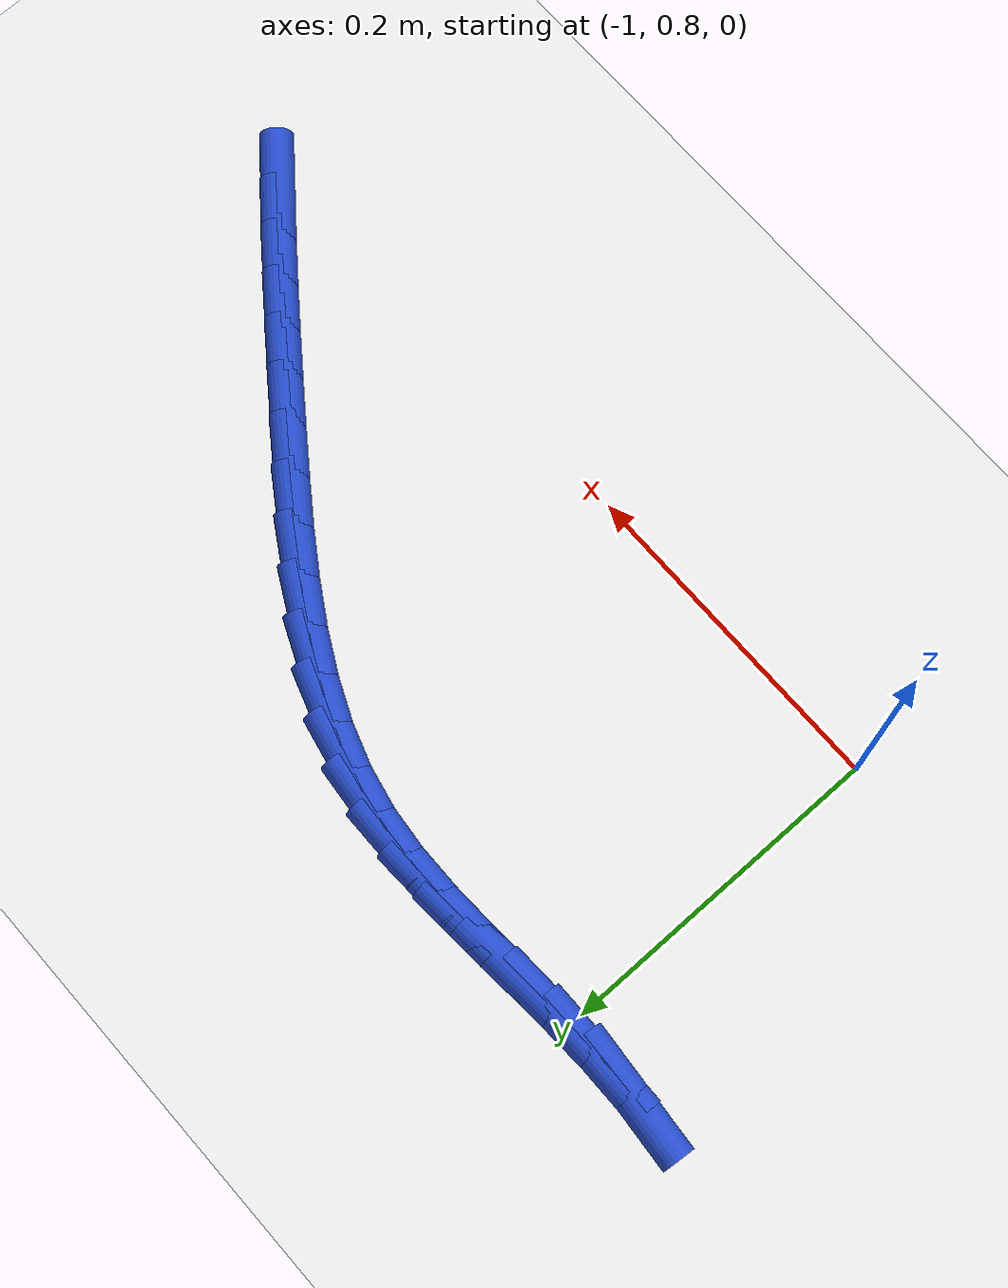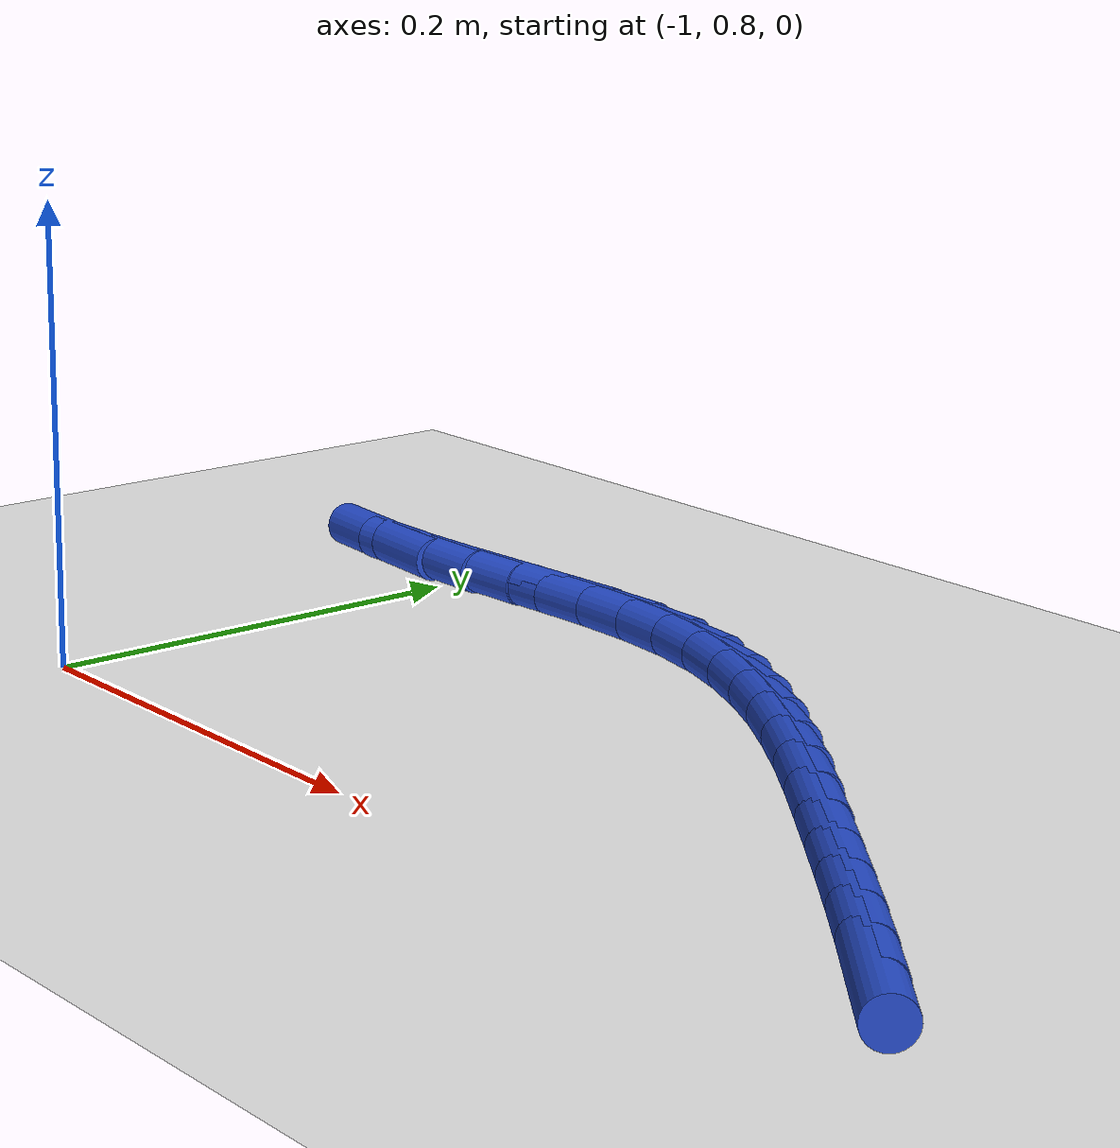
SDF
<sdf version="1.6">
 <world name="default">
  <model name="ground_plane">
   <static>1</static>
   <link name="link">
    <collision name="collision">
     <geometry><plane><normal>0 0 1</normal><size>100 100</size></plane></geometry>
     <surface><friction><ode><mu>100</mu><mu2>50</mu2></ode></friction></surface>
    </collision>
    <visual name="visual">
     <cast_shadows>0</cast_shadows>
     <geometry><plane><normal>0 0 1</normal><size>100 100</size></plane></geometry>
     <material>
      <script><uri>file://media/materials/scripts/gazebo.material</uri><name>Gazebo/WhiteGlow</name></script>
     </material>
    </visual>
   </link>
  </model>
  <model name="line">
   <link name="link_36">
    <pose>-0.5376845145754158 0.820261914080074 0.01 0 1.57 -0.6742073913071734</pose>
    <collision name="collision">
     <geometry><cylinder><radius>0.01</radius><length>0.08</length></cylinder></geometry>
    </collision>
    <visual name="visual">
     <material>
      <script><name>Gazebo/Blue</name><uri>file://media/materials/scripts/gazebo.material</uri></script>
     </material>
     <geometry><cylinder><radius>0.01</radius><length>0.08</length></cylinder></geometry>
    </visual>
   </link>
   <link name="link_37">
    <pose>-0.5597761480529915 0.8379158984094014 0.01 0 1.57 -0.6623905473552284</pose>
    <collision name="collision">
     <geometry><cylinder><radius>0.01</radius><length>0.08</length></cylinder></geometry>
    </collision>
    <visual name="visual">
     <material>
      <script><name>Gazebo/Blue</name><uri>file://media/materials/scripts/gazebo.material</uri></script>
     </material>
     <geometry><cylinder><radius>0.01</radius><length>0.08</length></cylinder></geometry>
    </visual>
   </link>
   <link name="link_38">
    <pose>-0.5822004855356525 0.8554055924027227 0.01 0 1.57 -0.6526241033862366</pose>
    <collision name="collision">
     <geometry><cylinder><radius>0.01</radius><length>0.08</length></cylinder></geometry>
    </collision>
    <visual name="visual">
     <material>
      <script><name>Gazebo/Blue</name><uri>file://media/materials/scripts/gazebo.material</uri></script>
     </material>
     <geometry><cylinder><radius>0.01</radius><length>0.08</length></cylinder></geometry>
    </visual>
   </link>
   <link name="link_39">
    <pose>-0.6049395553954362 0.8727862751699447 0.01 0 1.57 -0.6448909564656563</pose>
    <collision name="collision">
     <geometry><cylinder><radius>0.01</radius><length>0.08</length></cylinder></geometry>
    </collision>
    <visual name="visual">
     <material>
      <script><name>Gazebo/Blue</name><uri>file://media/materials/scripts/gazebo.material</uri></script>
     </material>
     <geometry><cylinder><radius>0.01</radius><length>0.08</length></cylinder></geometry>
    </visual>
   </link>
   <link name="link_40">
    <pose>-0.6279753860043795 0.8901132258209735 0.01 0 1.57 -0.6391645111710319</pose>
    <collision name="collision">
     <geometry><cylinder><radius>0.01</radius><length>0.08</length></cylinder></geometry>
    </collision>
    <visual name="visual">
     <material>
      <script><name>Gazebo/Blue</name><uri>file://media/materials/scripts/gazebo.material</uri></script>
     </material>
     <geometry><cylinder><radius>0.01</radius><length>0.08</length></cylinder></geometry>
    </visual>
   </link>
   <link name="link_41">
    <pose>-0.6512900057345197 0.9074417234657162 0.01 0 1.57 -0.6339264964163984</pose>
    <collision name="collision">
     <geometry><cylinder><radius>0.01</radius><length>0.08</length></cylinder></geometry>
    </collision>
    <visual name="visual">
     <material>
      <script><name>Gazebo/Blue</name><uri>file://media/materials/scripts/gazebo.material</uri></script>
     </material>
     <geometry><cylinder><radius>0.01</radius><length>0.08</length></cylinder></geometry>
    </visual>
   </link>
   <link name="link_42">
    <pose>-0.6748719996079549 0.9247779291292683 0.01 0 1.57 -0.6193008657885577</pose>
    <collision name="collision">
     <geometry><cylinder><radius>0.01</radius><length>0.08</length></cylinder></geometry>
    </collision>
    <visual name="visual">
     <material>
      <script><name>Gazebo/Blue</name><uri>file://media/materials/scripts/gazebo.material</uri></script>
     </material>
     <geometry><cylinder><radius>0.01</radius><length>0.08</length></cylinder></geometry>
    </visual>
   </link>
   <link name="link_43">
    <pose>-0.6987534782917921 0.9418019384980377 0.01 0 1.57 -0.5910021646953973</pose>
    <collision name="collision">
     <geometry><cylinder><radius>0.01</radius><length>0.08</length></cylinder></geometry>
    </collision>
    <visual name="visual">
     <material>
      <script><name>Gazebo/Blue</name><uri>file://media/materials/scripts/gazebo.material</uri></script>
     </material>
     <geometry><cylinder><radius>0.01</radius><length>0.08</length></cylinder></geometry>
    </visual>
   </link>
   <link name="link_44">
    <pose>-0.72298428520006 0.9580610052493113 0.01 0 1.57 -0.5482331402213708</pose>
    <collision name="collision">
     <geometry><cylinder><radius>0.01</radius><length>0.08</length></cylinder></geometry>
    </collision>
    <visual name="visual">
     <material>
      <script><name>Gazebo/Blue</name><uri>file://media/materials/scripts/gazebo.material</uri></script>
     </material>
     <geometry><cylinder><radius>0.01</radius><length>0.08</length></cylinder></geometry>
    </visual>
   </link>
   <link name="link_45">
    <pose>-0.7476143156811834 0.9731019940022443 0.01 0 1.57 -0.4897781574068066</pose>
    <collision name="collision">
     <geometry><cylinder><radius>0.01</radius><length>0.08</length></cylinder></geometry>
    </collision>
    <visual name="visual">
     <material>
      <script><name>Gazebo/Blue</name><uri>file://media/materials/scripts/gazebo.material</uri></script>
     </material>
     <geometry><cylinder><radius>0.01</radius><length>0.08</length></cylinder></geometry>
    </visual>
   </link>
   <link name="link_46">
    <pose>-0.7726934650835866 0.9864717693759908 0.01 0 1.57 -0.4142131788075716</pose>
    <collision name="collision">
     <geometry><cylinder><radius>0.01</radius><length>0.08</length></cylinder></geometry>
    </collision>
    <visual name="visual">
     <material>
      <script><name>Gazebo/Blue</name><uri>file://media/materials/scripts/gazebo.material</uri></script>
     </material>
     <geometry><cylinder><radius>0.01</radius><length>0.08</length></cylinder></geometry>
    </visual>
   </link>
   <link name="link_47">
    <pose>-0.7982716287556936 0.9977171959897045 0.01 0 1.57 -0.32033473618473374</pose>
    <collision name="collision">
     <geometry><cylinder><radius>0.01</radius><length>0.08</length></cylinder></geometry>
    </collision>
    <visual name="visual">
     <material>
      <script><name>Gazebo/Blue</name><uri>file://media/materials/scripts/gazebo.material</uri></script>
     </material>
     <geometry><cylinder><radius>0.01</radius><length>0.08</length></cylinder></geometry>
    </visual>
   </link>
   <link name="link_48">
    <pose>-0.824398702045929 1.0063851384625404 0.01 0 1.57 -0.20826086767417049</pose>
    <collision name="collision">
     <geometry><cylinder><radius>0.01</radius><length>0.08</length></cylinder></geometry>
    </collision>
    <visual name="visual">
     <material>
      <script><name>Gazebo/Blue</name><uri>file://media/materials/scripts/gazebo.material</uri></script>
     </material>
     <geometry><cylinder><radius>0.01</radius><length>0.08</length></cylinder></geometry>
    </visual>
   </link>
   <link name="link_49">
    <pose>-0.8511232969175112 1.0120327128234734 0.01 0 1.57 -0.0971254992680046</pose>
    <collision name="collision">
     <geometry><cylinder><radius>0.01</radius><length>0.08</length></cylinder></geometry>
    </collision>
    <visual name="visual">
     <material>
      <script><name>Gazebo/Blue</name><uri>file://media/materials/scripts/gazebo.material</uri></script>
     </material>
     <geometry><cylinder><radius>0.01</radius><length>0.08</length></cylinder></geometry>
    </visual>
   </link>
   <link name="link_50">
    <pose>-0.8784343529677014 1.0146936853509863 0.01 0 1.57 -0.0135497071879427</pose>
    <collision name="collision">
     <geometry><cylinder><radius>0.01</radius><length>0.08</length></cylinder></geometry>
    </collision>
    <visual name="visual">
     <material>
      <script><name>Gazebo/Blue</name><uri>file://media/materials/scripts/gazebo.material</uri></script>
     </material>
     <geometry><cylinder><radius>0.01</radius><length>0.08</length></cylinder></geometry>
    </visual>
   </link>
   <link name="link_51">
    <pose>-0.9062371063712255 1.0150704275748463 0.01 0 1.57 0.040947311922326195</pose>
    <collision name="collision">
     <geometry><cylinder><radius>0.01</radius><length>0.08</length></cylinder></geometry>
    </collision>
    <visual name="visual">
     <material>
      <script><name>Gazebo/Blue</name><uri>file://media/materials/scripts/gazebo.material</uri></script>
     </material>
     <geometry><cylinder><radius>0.01</radius><length>0.08</length></cylinder></geometry>
    </visual>
   </link>
   <link name="link_52">
    <pose>-0.9344305304965821 1.0139153369975247 0.01 0 1.57 0.06781430517034934</pose>
    <collision name="collision">
     <geometry><cylinder><radius>0.01</radius><length>0.08</length></cylinder></geometry>
    </collision>
    <visual name="visual">
     <material>
      <script><name>Gazebo/Blue</name><uri>file://media/materials/scripts/gazebo.material</uri></script>
     </material>
     <geometry><cylinder><radius>0.01</radius><length>0.08</length></cylinder></geometry>
    </visual>
   </link>
   <link name="link_53">
    <pose>-0.9629135987122699 1.0119808111214916 0.01 0 1.57 0.06830822056251305</pose>
    <collision name="collision">
     <geometry><cylinder><radius>0.01</radius><length>0.08</length></cylinder></geometry>
    </collision>
    <visual name="visual">
     <material>
      <script><name>Gazebo/Blue</name><uri>file://media/materials/scripts/gazebo.material</uri></script>
     </material>
     <geometry><cylinder><radius>0.01</radius><length>0.08</length></cylinder></geometry>
    </visual>
   </link>
   <link name="link_54">
    <pose>-0.9915852843867886 1.010019247449219 0.01 0 1.57 0.04295808496216087</pose>
    <collision name="collision">
     <geometry><cylinder><radius>0.01</radius><length>0.08</length></cylinder></geometry>
    </collision>
    <visual name="visual">
     <material>
      <script><name>Gazebo/Blue</name><uri>file://media/materials/scripts/gazebo.material</uri></script>
     </material>
     <geometry><cylinder><radius>0.01</radius><length>0.08</length></cylinder></geometry>
    </visual>
   </link>
   <link name="link_55">
    <pose>-1.0203445608886357 1.0087830434831766 0.01 0 1.57 -0.008402869825890825</pose>
    <collision name="collision">
     <geometry><cylinder><radius>0.01</radius><length>0.08</length></cylinder></geometry>
    </collision>
    <visual name="visual">
     <material>
      <script><name>Gazebo/Blue</name><uri>file://media/materials/scripts/gazebo.material</uri></script>
     </material>
     <geometry><cylinder><radius>0.01</radius><length>0.08</length></cylinder></geometry>
    </visual>
   </link>
   <link name="link_56">
    <pose>-1.0490904015863114 1.0090245967258367 0.01 0 1.57 -0.08611513555287685</pose>
    <collision name="collision">
     <geometry><cylinder><radius>0.01</radius><length>0.08</length></cylinder></geometry>
    </collision>
    <visual name="visual">
     <material>
      <script><name>Gazebo/Blue</name><uri>file://media/materials/scripts/gazebo.material</uri></script>
     </material>
     <geometry><cylinder><radius>0.01</radius><length>0.08</length></cylinder></geometry>
    </visual>
   </link>
  </model>
 </world>
</sdf>
